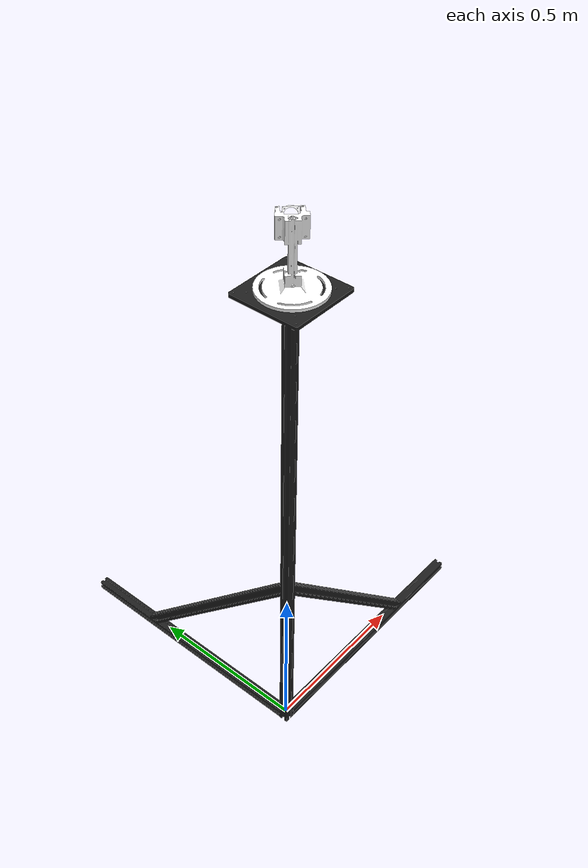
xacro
<?xml version="1.0"?>
<robot name="tower_$(arg color)_$(arg id)"
  xmlns:xacro="http://www.ros.org/wiki/xacro">
  <xacro:property name="M_PI" value="3.14159265" />
  <gazebo>
    <static>true</static>
  </gazebo>

  <link name="base">
    <inertial>
      <origin xyz="0.075442 0.07509 0.64278" rpy="0 0 0" />
      <mass value="1.7647" />
      <inertia ixx="0.11956" ixy="7.4895E-08" ixz="0.0054762" iyy="0.11956" iyz="0.0054762" izz="0.038368" />
    </inertial>
    <visual>
      <origin xyz="0 0 0" rpy="0 0 0" />
      <geometry>
        <mesh filename="package://icra_camera/meshes/base.STL" />
      </geometry>
      <material name="">
        <color rgba="0.11765 0.11765 0.11765 1" />
      </material>
    </visual>
    <collision>
      <origin xyz="0 0 0" rpy="0 0 0" />
      <geometry>
        <mesh filename="package://icra_camera/meshes/base.STL" />
      </geometry>
    </collision>
  </link>
  <link name="camera_base">
    <inertial>
      <origin xyz="0.0050535 0.0050535 0.058376" rpy="0 0 0" />
      <mass value="0.34734" />
      <inertia ixx="0.00048142" ixy="1.3963E-06" ixz="-4.7259E-09" iyy="0.00048142" iyz="-4.7259E-09" izz="0.00071316" />
    </inertial>
    <visual>
      <origin xyz="0 0 0" rpy="0 0 0" />
      <geometry>
        <mesh filename="package://icra_camera/meshes/camera_base.STL" />
      </geometry>
      <material name="">
        <color rgba="1 1 1 1" />
      </material>
    </visual>
    <collision>
      <origin xyz="0 0 0" rpy="0 0 0" />
      <geometry>
        <mesh filename="package://icra_camera/meshes/camera_base.STL" />
      </geometry>
    </collision>
  </link>
  <joint name="joint_yaw" type="continuous">
    <origin xyz="-0.011775 -0.01575 1.568" rpy="0 0 0" />
    <parent link="base" />
    <child link="camera_base" />
    <axis xyz="0 0 1" />
  </joint>
  <link name="camera">
    <inertial>
      <origin xyz="0.0030444 0.00055813 -1.1425E-06" rpy="0 0 0" />
      <mass value="0.0054585" />
      <inertia ixx="2.4741E-06" ixy="-5.9674E-09" ixz="8.8181E-12" iyy="8.3749E-07" iyz="-2.3985E-11" izz="1.7897E-06" />
    </inertial>
    <visual>
      <origin xyz="0 0 0" rpy="0 0 0" />
      <geometry>
        <mesh filename="package://icra_camera/meshes/camera.STL" />
      </geometry>
      <material name="">
        <color rgba="1 1 1 1" />
      </material>
    </visual>
    <collision>
      <origin xyz="0 0 0" rpy="0 0 0" />
      <geometry>
        <mesh filename="package://icra_camera/meshes/camera.STL" />
      </geometry>
    </collision>
  </link>
  <joint name="pitch" type="continuous">
    <origin xyz="0.04308 0.041786 0.15335" rpy="0 0.48991 0.7854" />
    <parent link="camera_base" />
    <child link="camera" />
    <axis xyz="0 -1 0" />
  </joint>

  <gazebo reference="camera">
    <sensor type="camera" name="tower">
      <update_rate>120.0</update_rate>
      <camera name="head">
        <horizontal_fov>1.3962634</horizontal_fov>
        <image>
          <width>1280</width>
          <height>800</height>
          <format>R8G8B8</format>
        </image>
        <clip>
          <near>0.02</near>
          <far>300</far>
        </clip>
        <noise>
          <type>gaussian</type>
          <!-- Noise is sampled independently per pixel on each frame.
               That pixel's noise value is added to each of its color
               channels, which at that point lie in the range [0,1]. -->
          <mean>0.0</mean>
          <stddev>0.007</stddev>
        </noise>
      </camera>

      <plugin name="camera_controller" filename="libgazebo_ros_camera.so">
        <alwaysOn>true</alwaysOn>
        <updateRate>120</updateRate>
        <cameraName>tower</cameraName>
        <imageTopicName>image_raw</imageTopicName>
        <cameraInfoTopicName>camera_info</cameraInfoTopicName>
        <frameName>camera</frameName>
        <hackBaseline>0.07</hackBaseline>
        <distortionK1>0.0</distortionK1>
        <distortionK2>0.0</distortionK2>
        <distortionK3>0.0</distortionK3>
        <distortionT1>0.0</distortionT1>
        <distortionT2>0.0</distortionT2>
      </plugin>
    </sensor>
  </gazebo>

</robot>
